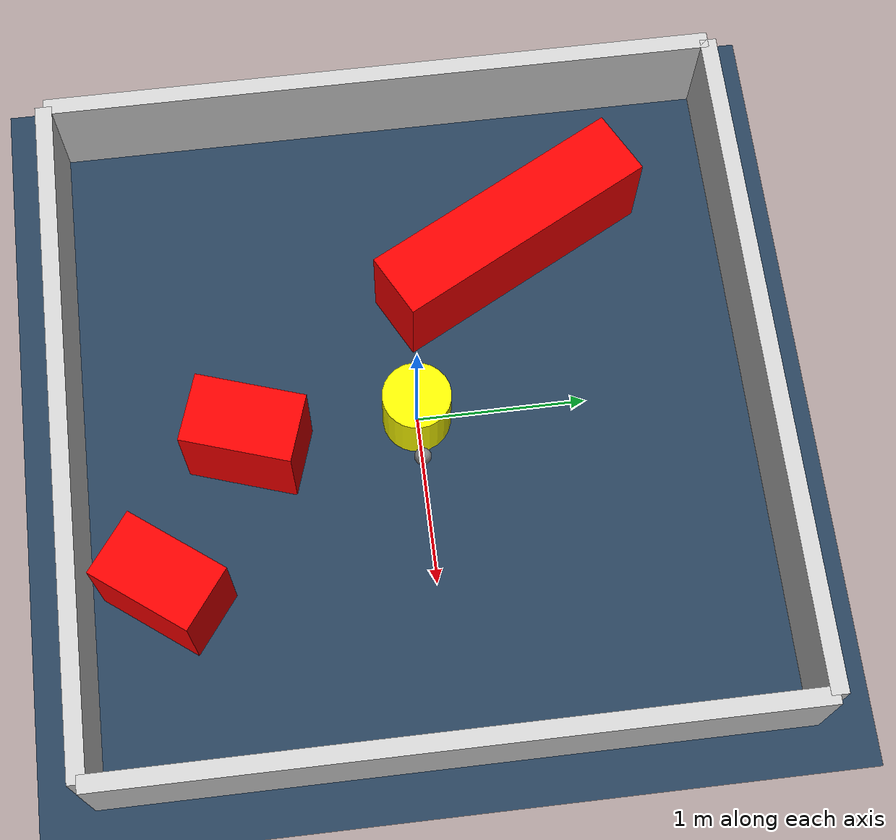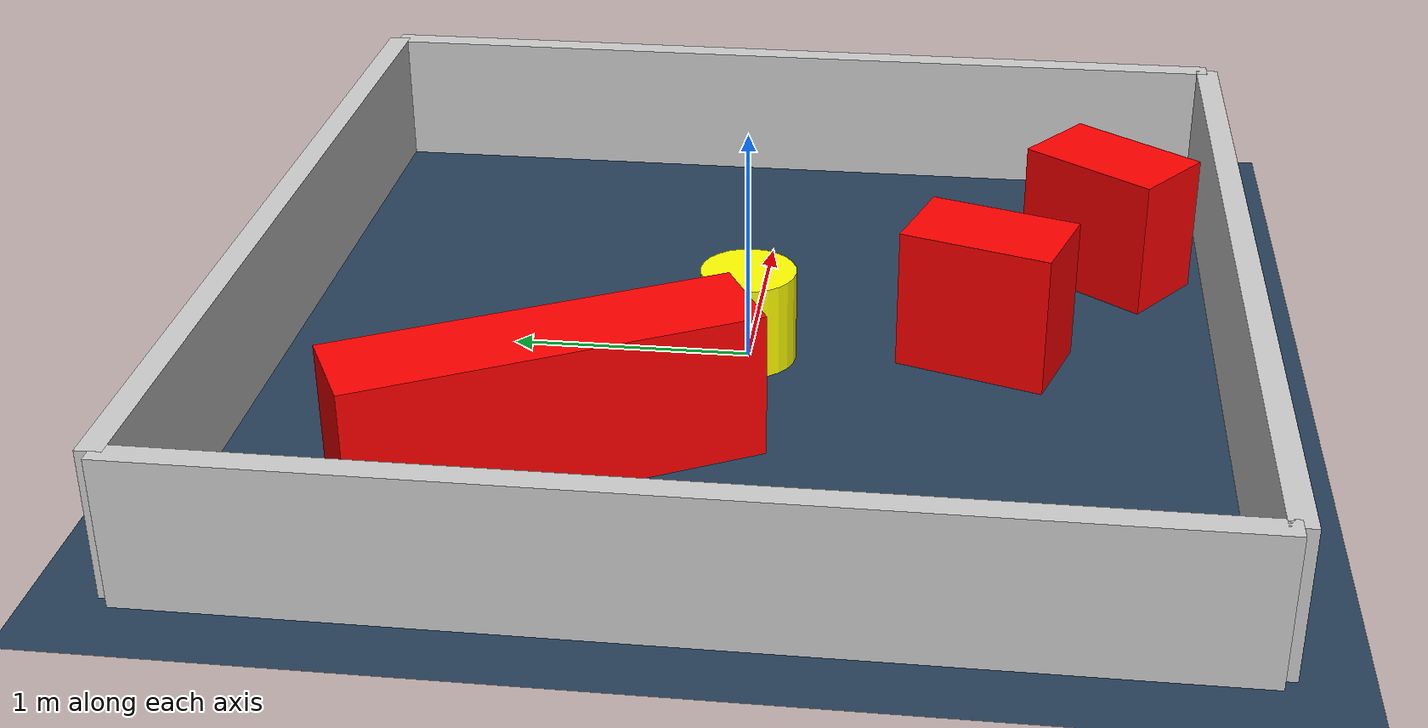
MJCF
<?xml version="1.0" ?>
<mujoco model="generated_environment">
  <option timestep="0.01" integrator="RK4" cone="elliptic"/>
  <default>
    <geom density="1"/>
  </default>
  <asset>
    <texture builtin="gradient" height="3072" rgb1="0.3 0.5 0.7" rgb2="0 0 0" type="skybox" width="512"/>
    <texture builtin="checker" height="300" mark="edge" markrgb="0.8 0.8 0.8" name="groundplane" rgb1="0.2 0.3 0.4" rgb2="0.1 0.2 0.3" type="2d" width="300"/>
    <material name="groundplane" reflectance="0.2" texrepeat="5 5" texture="groundplane" texuniform="true"/>
    <material name="robot" rgba="0.0 1.0 0.0 1"/>
  </asset>
  <worldbody>
    <light dir="0 0 -1" directional="true" pos="0 0 1.5"/>
    <geom condim="4" friction="1.0 0.005 0.001" material="groundplane" name="floor" size="0 0 0.05" type="plane"/>
    <body name="walls">
      <geom name="wall_1" condim="4" pos="-2.0 0.0 0.3" rgba="0.800000011920929 0.800000011920929 0.800000011920929 1.0" size="0.05 2.0 0.3" type="box"/>
      <geom name="wall_2" condim="4" pos="2.0 0.0 0.3" rgba="0.800000011920929 0.800000011920929 0.800000011920929 1.0" size="0.05 2.0 0.3" type="box"/>
      <geom name="wall_3" condim="4" pos="0.0 -2.0 0.3" rgba="0.800000011920929 0.800000011920929 0.800000011920929 1.0" size="2.0 0.05 0.3" type="box"/>
      <geom name="wall_4" condim="4" pos="0.0 2.0 0.3" rgba="0.800000011920929 0.800000011920929 0.800000011920929 1.0" size="2.0 0.05 0.3" type="box"/>
    </body>
    <body name="robot">
      <joint name="joint_x" type="slide" pos="0 0 0" axis="1 0 0"/>
      <joint name="joint_y" type="slide" pos="0 0 0" axis="0 1 0"/>
      <geom name="robot" type="sphere" pos="0.3 0.0 0.2" size="0.05" mass="5." friction="1.0 0.005 0.0001" condim="4" rgba="0.5 0.5 0.5 1.0"/>
      <site name="sensor_ball"/>
    </body>
    <body name="obstacle_movable_1">
      <geom name="obstacle_movable_1" condim="4" pos="0.0 0.0 0.2" euler="0 0 0.0" friction="1.0 0.005 0.001" rgba="1.0 1.0 0.0 1.0" size="0.2 0.2 0.0" type="cylinder" mass="0.1"/>
      <joint type="free"/>
    </body>
    <body name="obstacle_2_static">
      <geom name="obstacle_2_static" condim="4" pos="0.9117118063676679 -1.51355879516976 0.3" euler="0 0 233.36261861581028" friction="1.0 0.005 0.001" rgba="1 0 0 1" size="0.3191431617400869 0.2 0.3" type="box"/>
    </body>
    <body name="obstacle_3_static">
      <geom name="obstacle_3_static" condim="4" pos="0.09239450936452087 -0.9853859795336087 0.3" euler="0 0 71.91464826944615" friction="1.0 0.005 0.001" rgba="1 0 0 1" size="0.32041405646477134 0.2 0.3" type="box"/>
    </body>
    <body name="obstacle_4_static">
      <geom name="obstacle_4_static" condim="4" pos="-0.9858396583397417 0.6562720530950947 0.3" euler="0 0 117.95986746007668" friction="1.0 0.005 0.001" rgba="1 0 0 1" size="0.8175163292121552 0.2 0.3" type="box"/>
    </body>
  </worldbody>
  <actuator>
    <motor name="actuator_x" joint="joint_x" gear="1" ctrlrange="-1 1"/>
    <motor name="actuator_y" joint="joint_y" gear="1" ctrlrange="-1 1"/>
  </actuator>
</mujoco>
